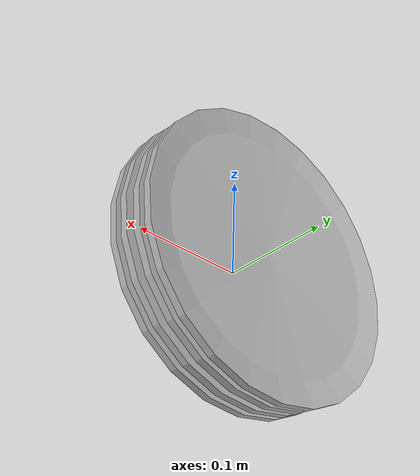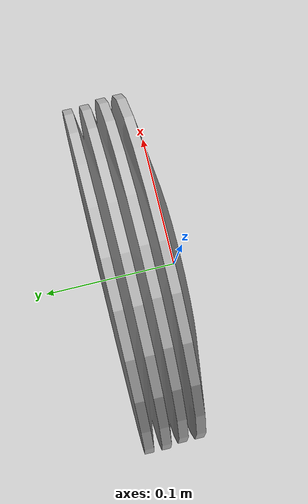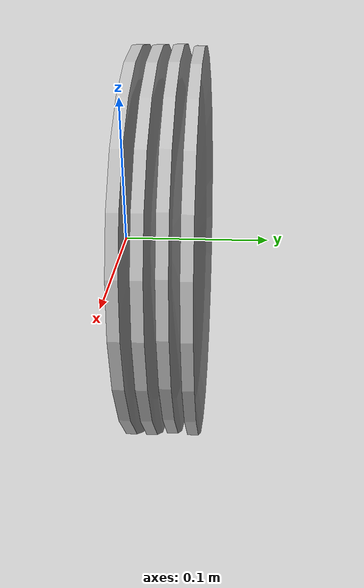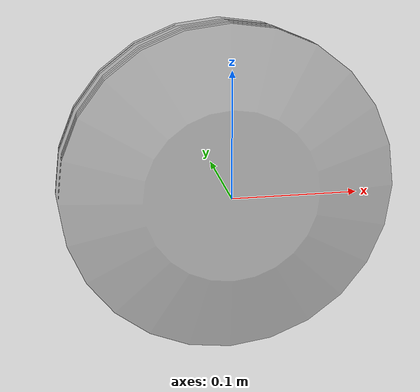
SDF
<?xml version="1.0" ?>
<sdf version="1.4">
  <model name="shelf2_dish2_2b">
    <link name="body">
      <pose>0 0 0 0 0 0</pose>
      <inertial>
        <pose>  -0.000000   0.028001  -0.000250 0 0 0</pose>
        <mass>0.5</mass>
        <inertia>
          <ixx>0.01</ixx>
          <ixy>0</ixy>
          <ixz>0</ixz>
          <iyy>0.01</iyy>
          <iyz>0</iyz>
          <izz>0.01</izz>
        </inertia>
      </inertial>
      <collision name="collision">
        <geometry>
          <mesh>
            <uri>model://bookshelf/shelf2_items/dish2_2b/dish2_2b.dae</uri>
          </mesh>
        </geometry>
      </collision>
      <visual name="visual">
        <geometry>
          <mesh>
            <uri>model://bookshelf/shelf2_items/dish2_2b/dish2_2b.dae</uri>
          </mesh>
        </geometry>
      </visual>
    </link>
  </model>
</sdf>
